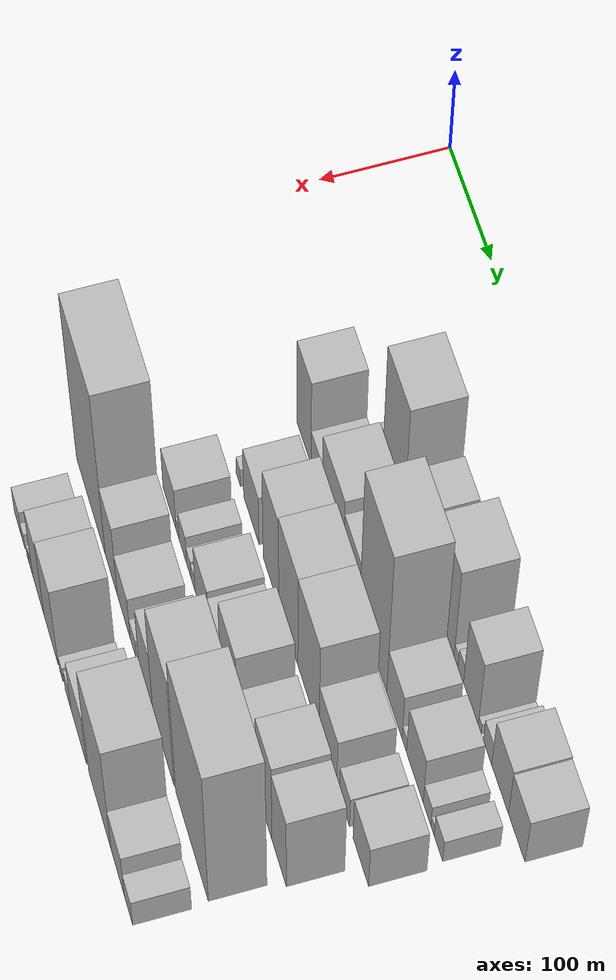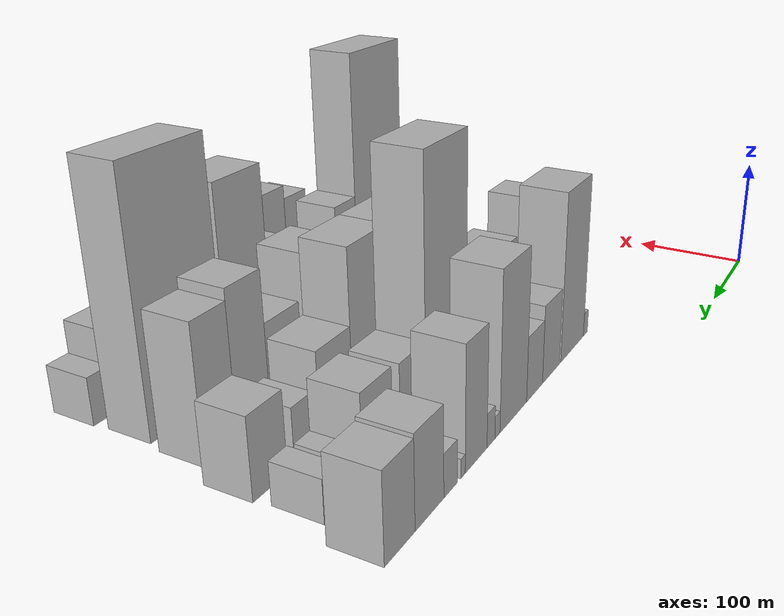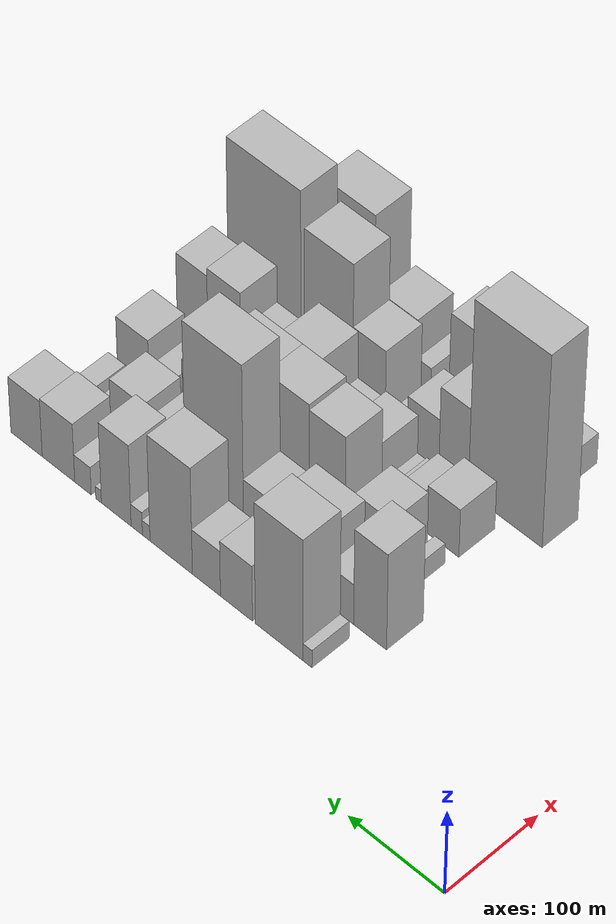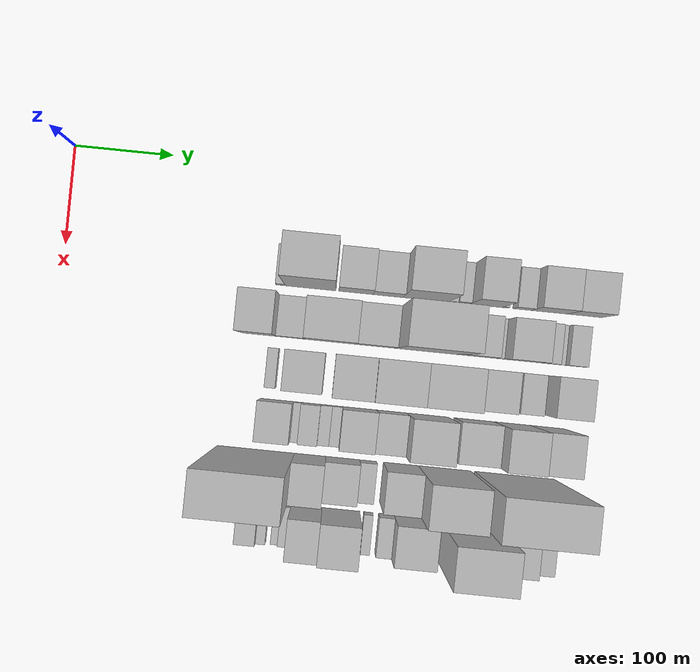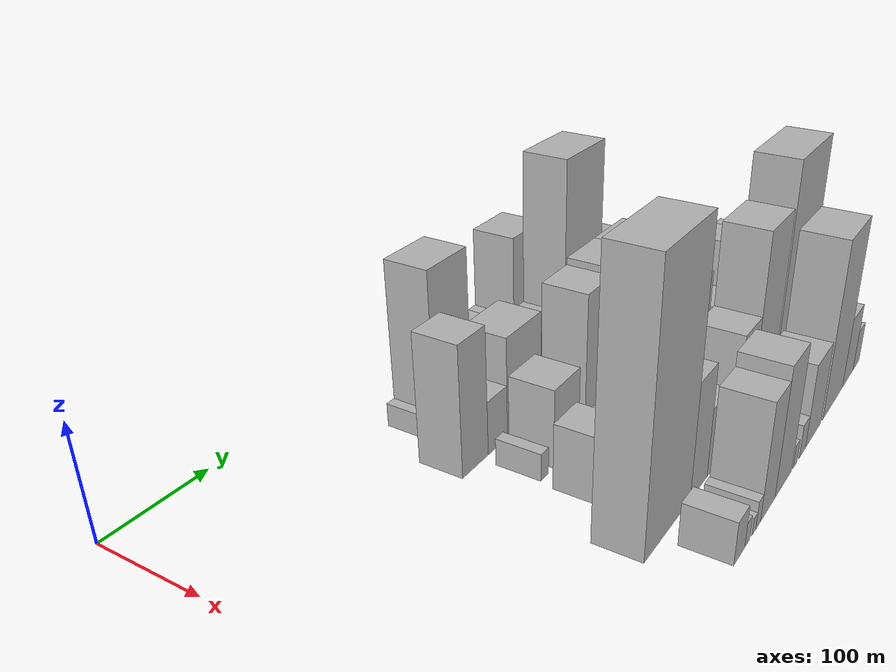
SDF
<sdf version="1.6">
 <world name="default">
  <model name="building_34">
   <static>1</static>
   <pose>100.0000 221.5178 0 0.000000 0.000000 0.000000</pose>
   <link name="link">
    <pose>0 0 10.50 0 0 0</pose>
    <collision name="collision"><geometry><box><size>40.0000 9.5552 21.0000</size></box></geometry></collision>
    <visual name="visual">
     <cast_shadows>0</cast_shadows>
     <geometry><box><size>40.0000 9.5552 21.0000</size></box></geometry>
     <material>
      <script>
       <uri>model://HANNAS_wall/materials/scripts</uri>
       <uri>model://HANNAS_wall/materials/textures</uri>
       <name>vrc/HANNAS_wall</name>
      </script>
     </material>
    </visual>
   </link>
  </model>
  <model name="building_35">
   <static>1</static>
   <pose>100.0000 251.9744 0 0.000000 0.000000 0.000000</pose>
   <link name="link">
    <pose>0 0 72.00 0 0 0</pose>
    <collision name="collision"><geometry><box><size>40.0000 51.3581 144.0000</size></box></geometry></collision>
    <visual name="visual">
     <cast_shadows>0</cast_shadows>
     <geometry><box><size>40.0000 51.3581 144.0000</size></box></geometry>
     <material>
      <script>
       <uri>model://HANNAS_wall/materials/scripts</uri>
       <uri>model://HANNAS_wall/materials/textures</uri>
       <name>vrc/HANNAS_wall</name>
      </script>
     </material>
    </visual>
   </link>
  </model>
  <model name="building_36">
   <static>1</static>
   <pose>100.0000 297.9914 0 0.000000 0.000000 0.000000</pose>
   <link name="link">
    <pose>0 0 33.00 0 0 0</pose>
    <collision name="collision"><geometry><box><size>40.0000 34.6758 66.0000</size></box></geometry></collision>
    <visual name="visual">
     <cast_shadows>0</cast_shadows>
     <geometry><box><size>40.0000 34.6758 66.0000</size></box></geometry>
     <material>
      <script>
       <uri>model://HANNAS_wall/materials/scripts</uri>
       <uri>model://HANNAS_wall/materials/textures</uri>
       <name>vrc/HANNAS_wall</name>
      </script>
     </material>
    </visual>
   </link>
  </model>
  <model name="building_37">
   <static>1</static>
   <pose>100.0000 330.6113 0 0.000000 0.000000 0.000000</pose>
   <link name="link">
    <pose>0 0 27.00 0 0 0</pose>
    <collision name="collision"><geometry><box><size>40.0000 30.5640 54.0000</size></box></geometry></collision>
    <visual name="visual">
     <cast_shadows>0</cast_shadows>
     <geometry><box><size>40.0000 30.5640 54.0000</size></box></geometry>
     <material>
      <script>
       <uri>model://HANNAS_wall/materials/scripts</uri>
       <uri>model://HANNAS_wall/materials/textures</uri>
       <name>vrc/HANNAS_wall</name>
      </script>
     </material>
    </visual>
   </link>
  </model>
  <model name="building_38">
   <static>1</static>
   <pose>100.0000 369.2119 0 0.000000 0.000000 0.000000</pose>
   <link name="link">
    <pose>0 0 63.00 0 0 0</pose>
    <collision name="collision"><geometry><box><size>40.0000 46.6374 126.0000</size></box></geometry></collision>
    <visual name="visual">
     <cast_shadows>0</cast_shadows>
     <geometry><box><size>40.0000 46.6374 126.0000</size></box></geometry>
     <material>
      <script>
       <uri>model://HANNAS_wall/materials/scripts</uri>
       <uri>model://HANNAS_wall/materials/textures</uri>
       <name>vrc/HANNAS_wall</name>
      </script>
     </material>
    </visual>
   </link>
  </model>
  <model name="building_39">
   <static>1</static>
   <pose>100.0000 396.7341 0 0.000000 0.000000 0.000000</pose>
   <link name="link">
    <pose>0 0 9.00 0 0 0</pose>
    <collision name="collision"><geometry><box><size>40.0000 8.4070 18.0000</size></box></geometry></collision>
    <visual name="visual">
     <cast_shadows>0</cast_shadows>
     <geometry><box><size>40.0000 8.4070 18.0000</size></box></geometry>
     <material>
      <script>
       <uri>model://HANNAS_wall/materials/scripts</uri>
       <uri>model://HANNAS_wall/materials/textures</uri>
       <name>vrc/HANNAS_wall</name>
      </script>
     </material>
    </visual>
   </link>
  </model>
  <model name="building_40">
   <static>1</static>
   <pose>100.0000 407.2230 0 0.000000 0.000000 0.000000</pose>
   <link name="link">
    <pose>0 0 13.50 0 0 0</pose>
    <collision name="collision"><geometry><box><size>40.0000 12.5708 27.0000</size></box></geometry></collision>
    <visual name="visual">
     <cast_shadows>0</cast_shadows>
     <geometry><box><size>40.0000 12.5708 27.0000</size></box></geometry>
     <material>
      <script>
       <uri>model://HANNAS_wall/materials/scripts</uri>
       <uri>model://HANNAS_wall/materials/textures</uri>
       <name>vrc/HANNAS_wall</name>
      </script>
     </material>
    </visual>
   </link>
  </model>
  <model name="building_41">
   <static>1</static>
   <pose>100.0000 430.0035 0 0.000000 0.000000 0.000000</pose>
   <link name="link">
    <pose>0 0 48.00 0 0 0</pose>
    <collision name="collision"><geometry><box><size>40.0000 32.9901 96.0000</size></box></geometry></collision>
    <visual name="visual">
     <cast_shadows>0</cast_shadows>
     <geometry><box><size>40.0000 32.9901 96.0000</size></box></geometry>
     <material>
      <script>
       <uri>model://HANNAS_wall/materials/scripts</uri>
       <uri>model://HANNAS_wall/materials/textures</uri>
       <name>vrc/HANNAS_wall</name>
      </script>
     </material>
    </visual>
   </link>
  </model>
  <model name="building_42">
   <static>1</static>
   <pose>100.0000 449.6973 0 0.000000 0.000000 0.000000</pose>
   <link name="link">
    <pose>0 0 7.50 0 0 0</pose>
    <collision name="collision"><geometry><box><size>40.0000 6.3976 15.0000</size></box></geometry></collision>
    <visual name="visual">
     <cast_shadows>0</cast_shadows>
     <geometry><box><size>40.0000 6.3976 15.0000</size></box></geometry>
     <material>
      <script>
       <uri>model://HANNAS_wall/materials/scripts</uri>
       <uri>model://HANNAS_wall/materials/textures</uri>
       <name>vrc/HANNAS_wall</name>
      </script>
     </material>
    </visual>
   </link>
  </model>
  <model name="building_43">
   <static>1</static>
   <pose>100.0000 467.1115 0 0.000000 0.000000 0.000000</pose>
   <link name="link">
    <pose>0 0 16.50 0 0 0</pose>
    <collision name="collision"><geometry><box><size>40.0000 18.4309 33.0000</size></box></geometry></collision>
    <visual name="visual">
     <cast_shadows>0</cast_shadows>
     <geometry><box><size>40.0000 18.4309 33.0000</size></box></geometry>
     <material>
      <script>
       <uri>model://HANNAS_wall/materials/scripts</uri>
       <uri>model://HANNAS_wall/materials/textures</uri>
       <name>vrc/HANNAS_wall</name>
      </script>
     </material>
    </visual>
   </link>
  </model>
  <model name="building_44">
   <static>1</static>
   <pose>100.0000 494.6663 0 0.000000 0.000000 0.000000</pose>
   <link name="link">
    <pose>0 0 34.50 0 0 0</pose>
    <collision name="collision"><geometry><box><size>40.0000 36.6787 69.0000</size></box></geometry></collision>
    <visual name="visual">
     <cast_shadows>0</cast_shadows>
     <geometry><box><size>40.0000 36.6787 69.0000</size></box></geometry>
     <material>
      <script>
       <uri>model://HANNAS_wall/materials/scripts</uri>
       <uri>model://HANNAS_wall/materials/textures</uri>
       <name>vrc/HANNAS_wall</name>
      </script>
     </material>
    </visual>
   </link>
  </model>
  <model name="building_45">
   <static>1</static>
   <pose>100.0000 530.7949 0 0.000000 0.000000 0.000000</pose>
   <link name="link">
    <pose>0 0 33.00 0 0 0</pose>
    <collision name="collision"><geometry><box><size>40.0000 35.5785 66.0000</size></box></geometry></collision>
    <visual name="visual">
     <cast_shadows>0</cast_shadows>
     <geometry><box><size>40.0000 35.5785 66.0000</size></box></geometry>
     <material>
      <script>
       <uri>model://HANNAS_wall/materials/scripts</uri>
       <uri>model://HANNAS_wall/materials/textures</uri>
       <name>vrc/HANNAS_wall</name>
      </script>
     </material>
    </visual>
   </link>
  </model>
  <model name="building_86">
   <static>1</static>
   <pose>152.0000 206.3000 0 0.000000 0.000000 0.000000</pose>
   <link name="link">
    <pose>0 0 57.00 0 0 0</pose>
    <collision name="collision"><geometry><box><size>40.0000 35.0266 114.0000</size></box></geometry></collision>
    <visual name="visual">
     <cast_shadows>0</cast_shadows>
     <geometry><box><size>40.0000 35.0266 114.0000</size></box></geometry>
     <material>
      <script>
       <uri>model://HANNAS_wall/materials/scripts</uri>
       <uri>model://HANNAS_wall/materials/textures</uri>
       <name>vrc/HANNAS_wall</name>
      </script>
     </material>
    </visual>
   </link>
  </model>
  <model name="building_87">
   <static>1</static>
   <pose>152.0000 237.8095 0 0.000000 0.000000 0.000000</pose>
   <link name="link">
    <pose>0 0 24.00 0 0 0</pose>
    <collision name="collision"><geometry><box><size>40.0000 27.9924 48.0000</size></box></geometry></collision>
    <visual name="visual">
     <cast_shadows>0</cast_shadows>
     <geometry><box><size>40.0000 27.9924 48.0000</size></box></geometry>
     <material>
      <script>
       <uri>model://HANNAS_wall/materials/scripts</uri>
       <uri>model://HANNAS_wall/materials/textures</uri>
       <name>vrc/HANNAS_wall</name>
      </script>
     </material>
    </visual>
   </link>
  </model>
  <model name="building_88">
   <static>1</static>
   <pose>152.0000 277.7414 0 0.000000 0.000000 0.000000</pose>
   <link name="link">
    <pose>0 0 45.00 0 0 0</pose>
    <collision name="collision"><geometry><box><size>40.0000 51.8714 90.0000</size></box></geometry></collision>
    <visual name="visual">
     <cast_shadows>0</cast_shadows>
     <geometry><box><size>40.0000 51.8714 90.0000</size></box></geometry>
     <material>
      <script>
       <uri>model://HANNAS_wall/materials/scripts</uri>
       <uri>model://HANNAS_wall/materials/textures</uri>
       <name>vrc/HANNAS_wall</name>
      </script>
     </material>
    </visual>
   </link>
  </model>
  <model name="building_89">
   <static>1</static>
   <pose>152.0000 323.1185 0 0.000000 0.000000 0.000000</pose>
   <link name="link">
    <pose>0 0 36.00 0 0 0</pose>
    <collision name="collision"><geometry><box><size>40.0000 38.8828 72.0000</size></box></geometry></collision>
    <visual name="visual">
     <cast_shadows>0</cast_shadows>
     <geometry><box><size>40.0000 38.8828 72.0000</size></box></geometry>
     <material>
      <script>
       <uri>model://HANNAS_wall/materials/scripts</uri>
       <uri>model://HANNAS_wall/materials/textures</uri>
       <name>vrc/HANNAS_wall</name>
      </script>
     </material>
    </visual>
   </link>
  </model>
  <model name="building_90">
   <static>1</static>
   <pose>152.0000 374.3537 0 0.000000 0.000000 0.000000</pose>
   <link name="link">
    <pose>0 0 102.00 0 0 0</pose>
    <collision name="collision"><geometry><box><size>40.0000 63.5877 204.0000</size></box></geometry></collision>
    <visual name="visual">
     <cast_shadows>0</cast_shadows>
     <geometry><box><size>40.0000 63.5877 204.0000</size></box></geometry>
     <material>
      <script>
       <uri>model://HANNAS_wall/materials/scripts</uri>
       <uri>model://HANNAS_wall/materials/textures</uri>
       <name>vrc/HANNAS_wall</name>
      </script>
     </material>
    </visual>
   </link>
  </model>
  <model name="building_91">
   <static>1</static>
   <pose>152.0000 423.8537 0 0.000000 0.000000 0.000000</pose>
   <link name="link">
    <pose>0 0 33.00 0 0 0</pose>
    <collision name="collision"><geometry><box><size>40.0000 35.4122 66.0000</size></box></geometry></collision>
    <visual name="visual">
     <cast_shadows>0</cast_shadows>
     <geometry><box><size>40.0000 35.4122 66.0000</size></box></geometry>
     <material>
      <script>
       <uri>model://HANNAS_wall/materials/scripts</uri>
       <uri>model://HANNAS_wall/materials/textures</uri>
       <name>vrc/HANNAS_wall</name>
      </script>
     </material>
    </visual>
   </link>
  </model>
  <model name="building_92">
   <static>1</static>
   <pose>152.0000 446.6012 0 0.000000 0.000000 0.000000</pose>
   <link name="link">
    <pose>0 0 10.50 0 0 0</pose>
    <collision name="collision"><geometry><box><size>40.0000 10.0827 21.0000</size></box></geometry></collision>
    <visual name="visual">
     <cast_shadows>0</cast_shadows>
     <geometry><box><size>40.0000 10.0827 21.0000</size></box></geometry>
     <material>
      <script>
       <uri>model://HANNAS_wall/materials/scripts</uri>
       <uri>model://HANNAS_wall/materials/textures</uri>
       <name>vrc/HANNAS_wall</name>
      </script>
     </material>
    </visual>
   </link>
  </model>
  <model name="building_93">
   <static>1</static>
   <pose>152.0000 470.5676 0 0.000000 0.000000 0.000000</pose>
   <link name="link">
    <pose>0 0 34.50 0 0 0</pose>
    <collision name="collision"><geometry><box><size>40.0000 37.8502 69.0000</size></box></geometry></collision>
    <visual name="visual">
     <cast_shadows>0</cast_shadows>
     <geometry><box><size>40.0000 37.8502 69.0000</size></box></geometry>
     <material>
      <script>
       <uri>model://HANNAS_wall/materials/scripts</uri>
       <uri>model://HANNAS_wall/materials/textures</uri>
       <name>vrc/HANNAS_wall</name>
      </script>
     </material>
    </visual>
   </link>
  </model>
  <model name="building_94">
   <static>1</static>
   <pose>152.0000 498.0877 0 0.000000 0.000000 0.000000</pose>
   <link name="link">
    <pose>0 0 15.00 0 0 0</pose>
    <collision name="collision"><geometry><box><size>40.0000 17.1900 30.0000</size></box></geometry></collision>
    <visual name="visual">
     <cast_shadows>0</cast_shadows>
     <geometry><box><size>40.0000 17.1900 30.0000</size></box></geometry>
     <material>
      <script>
       <uri>model://HANNAS_wall/materials/scripts</uri>
       <uri>model://HANNAS_wall/materials/textures</uri>
       <name>vrc/HANNAS_wall</name>
      </script>
     </material>
    </visual>
   </link>
  </model>
  <model name="building_95">
   <static>1</static>
   <pose>152.0000 510.2926 0 0.000000 0.000000 0.000000</pose>
   <link name="link">
    <pose>0 0 7.50 0 0 0</pose>
    <collision name="collision"><geometry><box><size>40.0000 7.2199 15.0000</size></box></geometry></collision>
    <visual name="visual">
     <cast_shadows>0</cast_shadows>
     <geometry><box><size>40.0000 7.2199 15.0000</size></box></geometry>
     <material>
      <script>
       <uri>model://HANNAS_wall/materials/scripts</uri>
       <uri>model://HANNAS_wall/materials/textures</uri>
       <name>vrc/HANNAS_wall</name>
      </script>
     </material>
    </visual>
   </link>
  </model>
  <model name="building_96">
   <static>1</static>
   <pose>152.0000 523.5009 0 0.000000 0.000000 0.000000</pose>
   <link name="link">
    <pose>0 0 16.50 0 0 0</pose>
    <collision name="collision"><geometry><box><size>40.0000 19.1967 33.0000</size></box></geometry></collision>
    <visual name="visual">
     <cast_shadows>0</cast_shadows>
     <geometry><box><size>40.0000 19.1967 33.0000</size></box></geometry>
     <material>
      <script>
       <uri>model://HANNAS_wall/materials/scripts</uri>
       <uri>model://HANNAS_wall/materials/textures</uri>
       <name>vrc/HANNAS_wall</name>
      </script>
     </material>
    </visual>
   </link>
  </model>
  <model name="building_141">
   <static>1</static>
   <pose>204.0000 221.6081 0 0.000000 0.000000 0.000000</pose>
   <link name="link">
    <pose>0 0 12.00 0 0 0</pose>
    <collision name="collision"><geometry><box><size>40.0000 10.9268 24.0000</size></box></geometry></collision>
    <visual name="visual">
     <cast_shadows>0</cast_shadows>
     <geometry><box><size>40.0000 10.9268 24.0000</size></box></geometry>
     <material>
      <script>
       <uri>model://HANNAS_wall/materials/scripts</uri>
       <uri>model://HANNAS_wall/materials/textures</uri>
       <name>vrc/HANNAS_wall</name>
      </script>
     </material>
    </visual>
   </link>
  </model>
  <model name="building_142">
   <static>1</static>
   <pose>204.0000 254.6923 0 0.000000 0.000000 0.000000</pose>
   <link name="link">
    <pose>0 0 34.50 0 0 0</pose>
    <collision name="collision"><geometry><box><size>40.0000 39.2417 69.0000</size></box></geometry></collision>
    <visual name="visual">
     <cast_shadows>0</cast_shadows>
     <geometry><box><size>40.0000 39.2417 69.0000</size></box></geometry>
     <material>
      <script>
       <uri>model://HANNAS_wall/materials/scripts</uri>
       <uri>model://HANNAS_wall/materials/textures</uri>
       <name>vrc/HANNAS_wall</name>
      </script>
     </material>
    </visual>
   </link>
  </model>
  <model name="building_143">
   <static>1</static>
   <pose>204.0000 303.7212 0 0.000000 0.000000 0.000000</pose>
   <link name="link">
    <pose>0 0 63.00 0 0 0</pose>
    <collision name="collision"><geometry><box><size>40.0000 38.8161 126.0000</size></box></geometry></collision>
    <visual name="visual">
     <cast_shadows>0</cast_shadows>
     <geometry><box><size>40.0000 38.8161 126.0000</size></box></geometry>
     <material>
      <script>
       <uri>model://HANNAS_wall/materials/scripts</uri>
       <uri>model://HANNAS_wall/materials/textures</uri>
       <name>vrc/HANNAS_wall</name>
      </script>
     </material>
    </visual>
   </link>
  </model>
  <model name="building_144">
   <static>1</static>
   <pose>204.0000 346.5047 0 0.000000 0.000000 0.000000</pose>
   <link name="link">
    <pose>0 0 66.00 0 0 0</pose>
    <collision name="collision"><geometry><box><size>40.0000 46.7510 132.0000</size></box></geometry></collision>
    <visual name="visual">
     <cast_shadows>0</cast_shadows>
     <geometry><box><size>40.0000 46.7510 132.0000</size></box></geometry>
     <material>
      <script>
       <uri>model://HANNAS_wall/materials/scripts</uri>
       <uri>model://HANNAS_wall/materials/textures</uri>
       <name>vrc/HANNAS_wall</name>
      </script>
     </material>
    </visual>
   </link>
  </model>
  <model name="building_145">
   <static>1</static>
   <pose>204.0000 395.4128 0 0.000000 0.000000 0.000000</pose>
   <link name="link">
    <pose>0 0 66.00 0 0 0</pose>
    <collision name="collision"><geometry><box><size>40.0000 51.0651 132.0000</size></box></geometry></collision>
    <visual name="visual">
     <cast_shadows>0</cast_shadows>
     <geometry><box><size>40.0000 51.0651 132.0000</size></box></geometry>
     <material>
      <script>
       <uri>model://HANNAS_wall/materials/scripts</uri>
       <uri>model://HANNAS_wall/materials/textures</uri>
       <name>vrc/HANNAS_wall</name>
      </script>
     </material>
    </visual>
   </link>
  </model>
  <model name="building_146">
   <static>1</static>
   <pose>204.0000 441.7545 0 0.000000 0.000000 0.000000</pose>
   <link name="link">
    <pose>0 0 36.00 0 0 0</pose>
    <collision name="collision"><geometry><box><size>40.0000 41.6184 72.0000</size></box></geometry></collision>
    <visual name="visual">
     <cast_shadows>0</cast_shadows>
     <geometry><box><size>40.0000 41.6184 72.0000</size></box></geometry>
     <material>
      <script>
       <uri>model://HANNAS_wall/materials/scripts</uri>
       <uri>model://HANNAS_wall/materials/textures</uri>
       <name>vrc/HANNAS_wall</name>
      </script>
     </material>
    </visual>
   </link>
  </model>
  <model name="building_147">
   <static>1</static>
   <pose>204.0000 480.4305 0 0.000000 0.000000 0.000000</pose>
   <link name="link">
    <pose>0 0 22.50 0 0 0</pose>
    <collision name="collision"><geometry><box><size>40.0000 23.7335 45.0000</size></box></geometry></collision>
    <visual name="visual">
     <cast_shadows>0</cast_shadows>
     <geometry><box><size>40.0000 23.7335 45.0000</size></box></geometry>
     <material>
      <script>
       <uri>model://HANNAS_wall/materials/scripts</uri>
       <uri>model://HANNAS_wall/materials/textures</uri>
       <name>vrc/HANNAS_wall</name>
      </script>
     </material>
    </visual>
   </link>
  </model>
  <model name="building_148">
   <static>1</static>
   <pose>204.0000 518.3191 0 0.000000 0.000000 0.000000</pose>
   <link name="link">
    <pose>0 0 31.50 0 0 0</pose>
    <collision name="collision"><geometry><box><size>40.0000 36.0438 63.0000</size></box></geometry></collision>
    <visual name="visual">
     <cast_shadows>0</cast_shadows>
     <geometry><box><size>40.0000 36.0438 63.0000</size></box></geometry>
     <material>
      <script>
       <uri>model://HANNAS_wall/materials/scripts</uri>
       <uri>model://HANNAS_wall/materials/textures</uri>
       <name>vrc/HANNAS_wall</name>
      </script>
     </material>
    </visual>
   </link>
  </model>
  <model name="building_192">
   <static>1</static>
   <pose>256.0000 229.7420 0 0.000000 0.000000 0.000000</pose>
   <link name="link">
    <pose>0 0 28.50 0 0 0</pose>
    <collision name="collision"><geometry><box><size>40.0000 34.1493 57.0000</size></box></geometry></collision>
    <visual name="visual">
     <cast_shadows>0</cast_shadows>
     <geometry><box><size>40.0000 34.1493 57.0000</size></box></geometry>
     <material>
      <script>
       <uri>model://HANNAS_wall/materials/scripts</uri>
       <uri>model://HANNAS_wall/materials/textures</uri>
       <name>vrc/HANNAS_wall</name>
      </script>
     </material>
    </visual>
   </link>
  </model>
  <model name="building_193">
   <static>1</static>
   <pose>256.0000 250.7907 0 0.000000 0.000000 0.000000</pose>
   <link name="link">
    <pose>0 0 9.00 0 0 0</pose>
    <collision name="collision"><geometry><box><size>40.0000 7.9480 18.0000</size></box></geometry></collision>
    <visual name="visual">
     <cast_shadows>0</cast_shadows>
     <geometry><box><size>40.0000 7.9480 18.0000</size></box></geometry>
     <material>
      <script>
       <uri>model://HANNAS_wall/materials/scripts</uri>
       <uri>model://HANNAS_wall/materials/textures</uri>
       <name>vrc/HANNAS_wall</name>
      </script>
     </material>
    </visual>
   </link>
  </model>
  <model name="building_194">
   <static>1</static>
   <pose>256.0000 264.5294 0 0.000000 0.000000 0.000000</pose>
   <link name="link">
    <pose>0 0 19.50 0 0 0</pose>
    <collision name="collision"><geometry><box><size>40.0000 19.5294 39.0000</size></box></geometry></collision>
    <visual name="visual">
     <cast_shadows>0</cast_shadows>
     <geometry><box><size>40.0000 19.5294 39.0000</size></box></geometry>
     <material>
      <script>
       <uri>model://HANNAS_wall/materials/scripts</uri>
       <uri>model://HANNAS_wall/materials/textures</uri>
       <name>vrc/HANNAS_wall</name>
      </script>
     </material>
    </visual>
   </link>
  </model>
  <model name="building_195">
   <static>1</static>
   <pose>256.0000 280.1240 0 0.000000 0.000000 0.000000</pose>
   <link name="link">
    <pose>0 0 12.00 0 0 0</pose>
    <collision name="collision"><geometry><box><size>40.0000 11.6598 24.0000</size></box></geometry></collision>
    <visual name="visual">
     <cast_shadows>0</cast_shadows>
     <geometry><box><size>40.0000 11.6598 24.0000</size></box></geometry>
     <material>
      <script>
       <uri>model://HANNAS_wall/materials/scripts</uri>
       <uri>model://HANNAS_wall/materials/textures</uri>
       <name>vrc/HANNAS_wall</name>
      </script>
     </material>
    </visual>
   </link>
  </model>
  <model name="building_196">
   <static>1</static>
   <pose>256.0000 291.0521 0 0.000000 0.000000 0.000000</pose>
   <link name="link">
    <pose>0 0 10.50 0 0 0</pose>
    <collision name="collision"><geometry><box><size>40.0000 10.1964 21.0000</size></box></geometry></collision>
    <visual name="visual">
     <cast_shadows>0</cast_shadows>
     <geometry><box><size>40.0000 10.1964 21.0000</size></box></geometry>
     <material>
      <script>
       <uri>model://HANNAS_wall/materials/scripts</uri>
       <uri>model://HANNAS_wall/materials/textures</uri>
       <name>vrc/HANNAS_wall</name>
      </script>
     </material>
    </visual>
   </link>
  </model>
  <model name="building_197">
   <static>1</static>
   <pose>256.0000 313.5097 0 0.000000 0.000000 0.000000</pose>
   <link name="link">
    <pose>0 0 33.00 0 0 0</pose>
    <collision name="collision"><geometry><box><size>40.0000 34.7188 66.0000</size></box></geometry></collision>
    <visual name="visual">
     <cast_shadows>0</cast_shadows>
     <geometry><box><size>40.0000 34.7188 66.0000</size></box></geometry>
     <material>
      <script>
       <uri>model://HANNAS_wall/materials/scripts</uri>
       <uri>model://HANNAS_wall/materials/textures</uri>
       <name>vrc/HANNAS_wall</name>
      </script>
     </material>
    </visual>
   </link>
  </model>
  <model name="building_198">
   <static>1</static>
   <pose>256.0000 346.0371 0 0.000000 0.000000 0.000000</pose>
   <link name="link">
    <pose>0 0 28.50 0 0 0</pose>
    <collision name="collision"><geometry><box><size>40.0000 30.3360 57.0000</size></box></geometry></collision>
    <visual name="visual">
     <cast_shadows>0</cast_shadows>
     <geometry><box><size>40.0000 30.3360 57.0000</size></box></geometry>
     <material>
      <script>
       <uri>model://HANNAS_wall/materials/scripts</uri>
       <uri>model://HANNAS_wall/materials/textures</uri>
       <name>vrc/HANNAS_wall</name>
      </script>
     </material>
    </visual>
   </link>
  </model>
  <model name="building_199">
   <static>1</static>
   <pose>256.0000 382.4249 0 0.000000 0.000000 0.000000</pose>
   <link name="link">
    <pose>0 0 55.50 0 0 0</pose>
    <collision name="collision"><geometry><box><size>40.0000 42.4395 111.0000</size></box></geometry></collision>
    <visual name="visual">
     <cast_shadows>0</cast_shadows>
     <geometry><box><size>40.0000 42.4395 111.0000</size></box></geometry>
     <material>
      <script>
       <uri>model://HANNAS_wall/materials/scripts</uri>
       <uri>model://HANNAS_wall/materials/textures</uri>
       <name>vrc/HANNAS_wall</name>
      </script>
     </material>
    </visual>
   </link>
  </model>
  <model name="building_200">
   <static>1</static>
   <pose>256.0000 429.8114 0 0.000000 0.000000 0.000000</pose>
   <link name="link">
    <pose>0 0 37.50 0 0 0</pose>
    <collision name="collision"><geometry><box><size>40.0000 40.3337 75.0000</size></box></geometry></collision>
    <visual name="visual">
     <cast_shadows>0</cast_shadows>
     <geometry><box><size>40.0000 40.3337 75.0000</size></box></geometry>
     <material>
      <script>
       <uri>model://HANNAS_wall/materials/scripts</uri>
       <uri>model://HANNAS_wall/materials/textures</uri>
       <name>vrc/HANNAS_wall</name>
      </script>
     </material>
    </visual>
   </link>
  </model>
  <model name="building_201">
   <static>1</static>
   <pose>256.0000 468.4671 0 0.000000 0.000000 0.000000</pose>
   <link name="link">
    <pose>0 0 58.50 0 0 0</pose>
    <collision name="collision"><geometry><box><size>40.0000 36.9778 117.0000</size></box></geometry></collision>
    <visual name="visual">
     <cast_shadows>0</cast_shadows>
     <geometry><box><size>40.0000 36.9778 117.0000</size></box></geometry>
     <material>
      <script>
       <uri>model://HANNAS_wall/materials/scripts</uri>
       <uri>model://HANNAS_wall/materials/textures</uri>
       <name>vrc/HANNAS_wall</name>
      </script>
     </material>
    </visual>
   </link>
  </model>
  <model name="building_202">
   <static>1</static>
   <pose>256.0000 504.1878 0 0.000000 0.000000 0.000000</pose>
   <link name="link">
    <pose>0 0 54.00 0 0 0</pose>
    <collision name="collision"><geometry><box><size>40.0000 34.4636 108.0000</size></box></geometry></collision>
    <visual name="visual">
     <cast_shadows>0</cast_shadows>
     <geometry><box><size>40.0000 34.4636 108.0000</size></box></geometry>
     <material>
      <script>
       <uri>model://HANNAS_wall/materials/scripts</uri>
       <uri>model://HANNAS_wall/materials/textures</uri>
       <name>vrc/HANNAS_wall</name>
      </script>
     </material>
    </visual>
   </link>
  </model>
  <model name="building_236">
   <static>1</static>
   <pose>308.0000 213.1445 0 0.000000 0.000000 0.000000</pose>
   <link name="link">
    <pose>0 0 112.50 0 0 0</pose>
    <collision name="collision"><geometry><box><size>40.0000 78.7338 225.0000</size></box></geometry></collision>
    <visual name="visual">
     <cast_shadows>0</cast_shadows>
     <geometry><box><size>40.0000 78.7338 225.0000</size></box></geometry>
     <material>
      <script>
       <uri>model://HANNAS_wall/materials/scripts</uri>
       <uri>model://HANNAS_wall/materials/textures</uri>
       <name>vrc/HANNAS_wall</name>
      </script>
     </material>
    </visual>
   </link>
  </model>
  <model name="building_237">
   <static>1</static>
   <pose>308.0000 268.4404 0 0.000000 0.000000 0.000000</pose>
   <link name="link">
    <pose>0 0 49.50 0 0 0</pose>
    <collision name="collision"><geometry><box><size>40.0000 31.8579 99.0000</size></box></geometry></collision>
    <visual name="visual">
     <cast_shadows>0</cast_shadows>
     <geometry><box><size>40.0000 31.8579 99.0000</size></box></geometry>
     <material>
      <script>
       <uri>model://HANNAS_wall/materials/scripts</uri>
       <uri>model://HANNAS_wall/materials/textures</uri>
       <name>vrc/HANNAS_wall</name>
      </script>
     </material>
    </visual>
   </link>
  </model>
  <model name="building_238">
   <static>1</static>
   <pose>308.0000 301.5437 0 0.000000 0.000000 0.000000</pose>
   <link name="link">
    <pose>0 0 30.00 0 0 0</pose>
    <collision name="collision"><geometry><box><size>40.0000 34.3488 60.0000</size></box></geometry></collision>
    <visual name="visual">
     <cast_shadows>0</cast_shadows>
     <geometry><box><size>40.0000 34.3488 60.0000</size></box></geometry>
     <material>
      <script>
       <uri>model://HANNAS_wall/materials/scripts</uri>
       <uri>model://HANNAS_wall/materials/textures</uri>
       <name>vrc/HANNAS_wall</name>
      </script>
     </material>
    </visual>
   </link>
  </model>
  <model name="building_239">
   <static>1</static>
   <pose>308.0000 327.2899 0 0.000000 0.000000 0.000000</pose>
   <link name="link">
    <pose>0 0 15.00 0 0 0</pose>
    <collision name="collision"><geometry><box><size>40.0000 17.1435 30.0000</size></box></geometry></collision>
    <visual name="visual">
     <cast_shadows>0</cast_shadows>
     <geometry><box><size>40.0000 17.1435 30.0000</size></box></geometry>
     <material>
      <script>
       <uri>model://HANNAS_wall/materials/scripts</uri>
       <uri>model://HANNAS_wall/materials/textures</uri>
       <name>vrc/HANNAS_wall</name>
      </script>
     </material>
    </visual>
   </link>
  </model>
  <model name="building_240">
   <static>1</static>
   <pose>308.0000 360.6740 0 0.000000 0.000000 0.000000</pose>
   <link name="link">
    <pose>0 0 46.50 0 0 0</pose>
    <collision name="collision"><geometry><box><size>40.0000 35.6249 93.0000</size></box></geometry></collision>
    <visual name="visual">
     <cast_shadows>0</cast_shadows>
     <geometry><box><size>40.0000 35.6249 93.0000</size></box></geometry>
     <material>
      <script>
       <uri>model://HANNAS_wall/materials/scripts</uri>
       <uri>model://HANNAS_wall/materials/textures</uri>
       <name>vrc/HANNAS_wall</name>
      </script>
     </material>
    </visual>
   </link>
  </model>
  <model name="building_241">
   <static>1</static>
   <pose>308.0000 405.1352 0 0.000000 0.000000 0.000000</pose>
   <link name="link">
    <pose>0 0 82.50 0 0 0</pose>
    <collision name="collision"><geometry><box><size>40.0000 53.2974 165.0000</size></box></geometry></collision>
    <visual name="visual">
     <cast_shadows>0</cast_shadows>
     <geometry><box><size>40.0000 53.2974 165.0000</size></box></geometry>
     <material>
      <script>
       <uri>model://HANNAS_wall/materials/scripts</uri>
       <uri>model://HANNAS_wall/materials/textures</uri>
       <name>vrc/HANNAS_wall</name>
      </script>
     </material>
    </visual>
   </link>
  </model>
  <model name="building_242">
   <static>1</static>
   <pose>308.0000 476.3294 0 0.000000 0.000000 0.000000</pose>
   <link name="link">
    <pose>0 0 102.00 0 0 0</pose>
    <collision name="collision"><geometry><box><size>40.0000 81.0911 204.0000</size></box></geometry></collision>
    <visual name="visual">
     <cast_shadows>0</cast_shadows>
     <geometry><box><size>40.0000 81.0911 204.0000</size></box></geometry>
     <material>
      <script>
       <uri>model://HANNAS_wall/materials/scripts</uri>
       <uri>model://HANNAS_wall/materials/textures</uri>
       <name>vrc/HANNAS_wall</name>
      </script>
     </material>
    </visual>
   </link>
  </model>
  <model name="building_281">
   <static>1</static>
   <pose>360.0000 212.4728 0 0.000000 0.000000 0.000000</pose>
   <link name="link">
    <pose>0 0 18.00 0 0 0</pose>
    <collision name="collision"><geometry><box><size>40.0000 20.8337 36.0000</size></box></geometry></collision>
    <visual name="visual">
     <cast_shadows>0</cast_shadows>
     <geometry><box><size>40.0000 20.8337 36.0000</size></box></geometry>
     <material>
      <script>
       <uri>model://HANNAS_wall/materials/scripts</uri>
       <uri>model://HANNAS_wall/materials/textures</uri>
       <name>vrc/HANNAS_wall</name>
      </script>
     </material>
    </visual>
   </link>
  </model>
  <model name="building_282">
   <static>1</static>
   <pose>360.0000 227.6609 0 0.000000 0.000000 0.000000</pose>
   <link name="link">
    <pose>0 0 10.50 0 0 0</pose>
    <collision name="collision"><geometry><box><size>40.0000 9.5425 21.0000</size></box></geometry></collision>
    <visual name="visual">
     <cast_shadows>0</cast_shadows>
     <geometry><box><size>40.0000 9.5425 21.0000</size></box></geometry>
     <material>
      <script>
       <uri>model://HANNAS_wall/materials/scripts</uri>
       <uri>model://HANNAS_wall/materials/textures</uri>
       <name>vrc/HANNAS_wall</name>
      </script>
     </material>
    </visual>
   </link>
  </model>
  <model name="building_283">
   <static>1</static>
   <pose>360.0000 241.1236 0 0.000000 0.000000 0.000000</pose>
   <link name="link">
    <pose>0 0 7.50 0 0 0</pose>
    <collision name="collision"><geometry><box><size>40.0000 7.3829 15.0000</size></box></geometry></collision>
    <visual name="visual">
     <cast_shadows>0</cast_shadows>
     <geometry><box><size>40.0000 7.3829 15.0000</size></box></geometry>
     <material>
      <script>
       <uri>model://HANNAS_wall/materials/scripts</uri>
       <uri>model://HANNAS_wall/materials/textures</uri>
       <name>vrc/HANNAS_wall</name>
      </script>
     </material>
    </visual>
   </link>
  </model>
  <model name="building_284">
   <static>1</static>
   <pose>360.0000 249.7235 0 0.000000 0.000000 0.000000</pose>
   <link name="link">
    <pose>0 0 12.00 0 0 0</pose>
    <collision name="collision"><geometry><box><size>40.0000 9.8171 24.0000</size></box></geometry></collision>
    <visual name="visual">
     <cast_shadows>0</cast_shadows>
     <geometry><box><size>40.0000 9.8171 24.0000</size></box></geometry>
     <material>
      <script>
       <uri>model://HANNAS_wall/materials/scripts</uri>
       <uri>model://HANNAS_wall/materials/textures</uri>
       <name>vrc/HANNAS_wall</name>
      </script>
     </material>
    </visual>
   </link>
  </model>
  <model name="building_285">
   <static>1</static>
   <pose>360.0000 270.0991 0 0.000000 0.000000 0.000000</pose>
   <link name="link">
    <pose>0 0 49.50 0 0 0</pose>
    <collision name="collision"><geometry><box><size>40.0000 30.9341 99.0000</size></box></geometry></collision>
    <visual name="visual">
     <cast_shadows>0</cast_shadows>
     <geometry><box><size>40.0000 30.9341 99.0000</size></box></geometry>
     <material>
      <script>
       <uri>model://HANNAS_wall/materials/scripts</uri>
       <uri>model://HANNAS_wall/materials/textures</uri>
       <name>vrc/HANNAS_wall</name>
      </script>
     </material>
    </visual>
   </link>
  </model>
  <model name="building_286">
   <static>1</static>
   <pose>360.0000 304.7515 0 0.000000 0.000000 0.000000</pose>
   <link name="link">
    <pose>0 0 55.50 0 0 0</pose>
    <collision name="collision"><geometry><box><size>40.0000 38.3708 111.0000</size></box></geometry></collision>
    <visual name="visual">
     <cast_shadows>0</cast_shadows>
     <geometry><box><size>40.0000 38.3708 111.0000</size></box></geometry>
     <material>
      <script>
       <uri>model://HANNAS_wall/materials/scripts</uri>
       <uri>model://HANNAS_wall/materials/textures</uri>
       <name>vrc/HANNAS_wall</name>
      </script>
     </material>
    </visual>
   </link>
  </model>
  <model name="building_287">
   <static>1</static>
   <pose>360.0000 332.5897 0 0.000000 0.000000 0.000000</pose>
   <link name="link">
    <pose>0 0 10.50 0 0 0</pose>
    <collision name="collision"><geometry><box><size>40.0000 9.3056 21.0000</size></box></geometry></collision>
    <visual name="visual">
     <cast_shadows>0</cast_shadows>
     <geometry><box><size>40.0000 9.3056 21.0000</size></box></geometry>
     <material>
      <script>
       <uri>model://HANNAS_wall/materials/scripts</uri>
       <uri>model://HANNAS_wall/materials/textures</uri>
       <name>vrc/HANNAS_wall</name>
      </script>
     </material>
    </visual>
   </link>
  </model>
  <model name="building_288">
   <static>1</static>
   <pose>360.0000 351.0468 0 0.000000 0.000000 0.000000</pose>
   <link name="link">
    <pose>0 0 15.00 0 0 0</pose>
    <collision name="collision"><geometry><box><size>40.0000 15.6086 30.0000</size></box></geometry></collision>
    <visual name="visual">
     <cast_shadows>0</cast_shadows>
     <geometry><box><size>40.0000 15.6086 30.0000</size></box></geometry>
     <material>
      <script>
       <uri>model://HANNAS_wall/materials/scripts</uri>
       <uri>model://HANNAS_wall/materials/textures</uri>
       <name>vrc/HANNAS_wall</name>
      </script>
     </material>
    </visual>
   </link>
  </model>
  <model name="building_289">
   <static>1</static>
   <pose>360.0000 379.4332 0 0.000000 0.000000 0.000000</pose>
   <link name="link">
    <pose>0 0 37.50 0 0 0</pose>
    <collision name="collision"><geometry><box><size>40.0000 41.1642 75.0000</size></box></geometry></collision>
    <visual name="visual">
     <cast_shadows>0</cast_shadows>
     <geometry><box><size>40.0000 41.1642 75.0000</size></box></geometry>
     <material>
      <script>
       <uri>model://HANNAS_wall/materials/scripts</uri>
       <uri>model://HANNAS_wall/materials/textures</uri>
       <name>vrc/HANNAS_wall</name>
      </script>
     </material>
    </visual>
   </link>
  </model>
  <model name="building_290">
   <static>1</static>
   <pose>360.0000 435.1897 0 0.000000 0.000000 0.000000</pose>
   <link name="link">
    <pose>0 0 79.50 0 0 0</pose>
    <collision name="collision"><geometry><box><size>40.0000 58.3487 159.0000</size></box></geometry></collision>
    <visual name="visual">
     <cast_shadows>0</cast_shadows>
     <geometry><box><size>40.0000 58.3487 159.0000</size></box></geometry>
     <material>
      <script>
       <uri>model://HANNAS_wall/materials/scripts</uri>
       <uri>model://HANNAS_wall/materials/textures</uri>
       <name>vrc/HANNAS_wall</name>
      </script>
     </material>
    </visual>
   </link>
  </model>
  <model name="building_291">
   <static>1</static>
   <pose>360.0000 481.4810 0 0.000000 0.000000 0.000000</pose>
   <link name="link">
    <pose>0 0 33.00 0 0 0</pose>
    <collision name="collision"><geometry><box><size>40.0000 34.2338 66.0000</size></box></geometry></collision>
    <visual name="visual">
     <cast_shadows>0</cast_shadows>
     <geometry><box><size>40.0000 34.2338 66.0000</size></box></geometry>
     <material>
      <script>
       <uri>model://HANNAS_wall/materials/scripts</uri>
       <uri>model://HANNAS_wall/materials/textures</uri>
       <name>vrc/HANNAS_wall</name>
      </script>
     </material>
    </visual>
   </link>
  </model>
  <model name="building_292">
   <static>1</static>
   <pose>360.0000 508.8552 0 0.000000 0.000000 0.000000</pose>
   <link name="link">
    <pose>0 0 19.50 0 0 0</pose>
    <collision name="collision"><geometry><box><size>40.0000 20.5146 39.0000</size></box></geometry></collision>
    <visual name="visual">
     <cast_shadows>0</cast_shadows>
     <geometry><box><size>40.0000 20.5146 39.0000</size></box></geometry>
     <material>
      <script>
       <uri>model://HANNAS_wall/materials/scripts</uri>
       <uri>model://HANNAS_wall/materials/textures</uri>
       <name>vrc/HANNAS_wall</name>
      </script>
     </material>
    </visual>
   </link>
  </model>
 </world>
</sdf>
